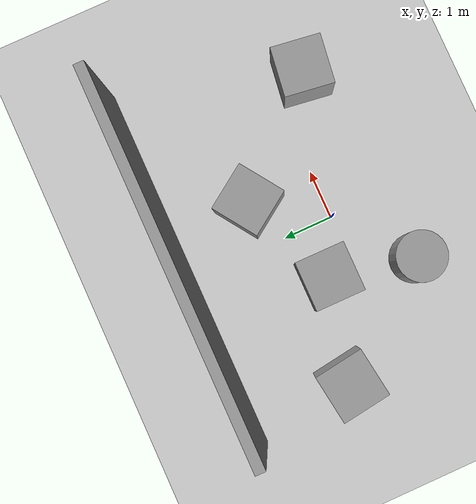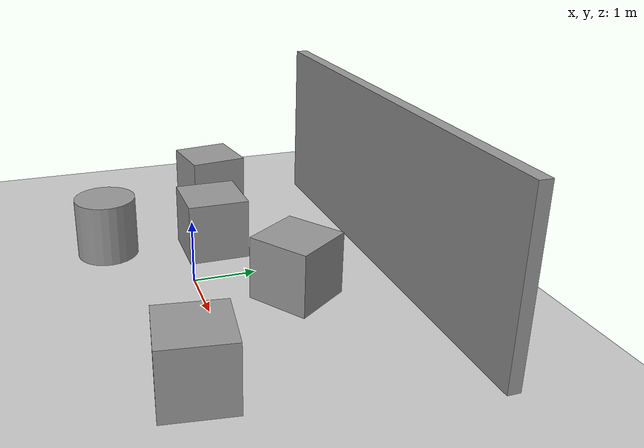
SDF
<sdf version="1.6">
 <world name="default">
  <light name="sun" type="directional">
   <pose>0 0 10 0 -0 0</pose>
   <diffuse>0.8 0.8 0.8 1</diffuse>
   <specular>0.1 0.1 0.1 1</specular>
   <attenuation>
    <range>1000</range>
    <constant>0.9</constant>
    <linear>0.01</linear>
    <quadratic>0.001</quadratic>
   </attenuation>
   <direction>-0.5 0.5 -1</direction>
  </light>
  <model name="ground_plane">
   <static>1</static>
   <link name="link">
    <collision name="collision">
     <geometry><plane><normal>0 0 1</normal><size>100 100</size></plane></geometry>
     <surface><friction><ode><mu>100</mu><mu2>50</mu2></ode></friction></surface>
    </collision>
    <visual name="visual">
     <cast_shadows>0</cast_shadows>
     <geometry><plane><normal>0 0 1</normal><size>100 100</size></plane></geometry>
     <material>
      <script><uri>file://media/materials/scripts/gazebo.material</uri><name>Gazebo/Grey</name></script>
     </material>
    </visual>
   </link>
  </model>
  <gravity>0 0 -9.8</gravity>
  <magnetic_field>6e-06 2.3e-05 -4.2e-05</magnetic_field>
  <atmosphere type="adiabatic"/>
  <physics name="default_physics" default="0" type="ode">
   <max_step_size>0.001</max_step_size>
   <real_time_factor>1</real_time_factor>
   <real_time_update_rate>1000</real_time_update_rate>
  </physics>
  <scene><ambient>0.4 0.4 0.4 1</ambient><background>0.7 0.7 0.7 1</background><shadows>1</shadows></scene>
  <spherical_coordinates>
   <surface_model>EARTH_WGS84</surface_model>
   <latitude_deg>0</latitude_deg>
   <longitude_deg>0</longitude_deg>
   <elevation>0</elevation>
   <heading_deg>0</heading_deg>
  </spherical_coordinates>
  <model name="grey_wall_asl">
   <static>1</static>
   <link name="link">
    <pose>0 0 1.4 0 -0 0</pose>
    <collision name="collision"><geometry><box><size>7.5 0.2 2.8</size></box></geometry></collision>
    <visual name="visual">
     <cast_shadows>0</cast_shadows>
     <geometry><box><size>7.5 0.2 2.8</size></box></geometry>
     <material>
      <script>
       <uri>model://grey_wall_asl/materials/scripts</uri>
       <uri>model://grey_wall_asl/materials/textures</uri>
       <name>vrc/grey_wall</name>
      </script>
     </material>
    </visual>
   </link>
   <pose>0.245174 3.06612 0 0 -0 0</pose>
  </model>
  <model name="unit_box">
   <pose>0.904487 1.37867 0.499999 5e-06 -4e-06 -0.969202</pose>
   <link name="link">
    <inertial>
     <mass>1</mass>
     <inertia>
      <ixx>0.166667</ixx>
      <ixy>0</ixy>
      <ixz>0</ixz>
      <iyy>0.166667</iyy>
      <iyz>0</iyz>
      <izz>0.166667</izz>
     </inertia>
    </inertial>
    <collision name="collision"><geometry><box><size>1 1 1</size></box></geometry></collision>
    <visual name="visual">
     <geometry><box><size>1 1 1</size></box></geometry>
     <material>
      <script><name>Gazebo/Grey</name><uri>file://media/materials/scripts/gazebo.material</uri></script>
     </material>
    </visual>
   </link>
  </model>
  <model name="unit_box_0">
   <pose>-3.07748 1.03399 0.499998 1e-06 -4e-06 0.142066</pose>
   <link name="link">
    <inertial>
     <mass>1</mass>
     <inertia>
      <ixx>0.166667</ixx>
      <ixy>0</ixy>
      <ixz>0</ixz>
      <iyy>0.166667</iyy>
      <iyz>0</iyz>
      <izz>0.166667</izz>
     </inertia>
    </inertial>
    <collision name="collision"><geometry><box><size>1 1 1</size></box></geometry></collision>
    <visual name="visual">
     <geometry><box><size>1 1 1</size></box></geometry>
     <material>
      <script><name>Gazebo/Grey</name><uri>file://media/materials/scripts/gazebo.material</uri></script>
     </material>
    </visual>
   </link>
  </model>
  <model name="unit_cylinder">
   <pose>-1.41226 -1.16179 0.499992 -3e-06 3e-06 0</pose>
   <link name="link">
    <inertial>
     <mass>1</mass>
     <inertia><ixx>0.145833</ixx><ixy>0</ixy><ixz>0</ixz><iyy>0.145833</iyy><iyz>0</iyz><izz>0.125</izz></inertia>
    </inertial>
    <collision name="collision">
     <geometry><cylinder><radius>0.5</radius><length>1</length></cylinder></geometry>
    </collision>
    <visual name="visual">
     <geometry><cylinder><radius>0.5</radius><length>1</length></cylinder></geometry>
     <material>
      <script><name>Gazebo/Grey</name><uri>file://media/materials/scripts/gazebo.material</uri></script>
     </material>
    </visual>
   </link>
  </model>
  <model name="unit_box_1">
   <pose>-1.04833 0.568982 0.499995 0 -1e-05 0</pose>
   <link name="link">
    <inertial>
     <mass>1</mass>
     <inertia>
      <ixx>0.166667</ixx>
      <ixy>0</ixy>
      <ixz>0</ixz>
      <iyy>0.166667</iyy>
      <iyz>0</iyz>
      <izz>0.166667</izz>
     </inertia>
    </inertial>
    <collision name="collision"><geometry><box><size>1 1 1</size></box></geometry></collision>
    <visual name="visual">
     <geometry><box><size>1 1 1</size></box></geometry>
     <material>
      <script><name>Gazebo/Grey</name><uri>file://media/materials/scripts/gazebo.material</uri></script>
     </material>
    </visual>
   </link>
  </model>
  <model name="unit_box_2">
   <pose>2.82183 -0.618401 0.5 0 0 -0.134103</pose>
   <link name="link">
    <inertial>
     <mass>1</mass>
     <inertia>
      <ixx>0.166667</ixx>
      <ixy>0</ixy>
      <ixz>0</ixz>
      <iyy>0.166667</iyy>
      <iyz>0</iyz>
      <izz>0.166667</izz>
     </inertia>
    </inertial>
    <collision name="collision"><geometry><box><size>1 1 1</size></box></geometry></collision>
    <visual name="visual">
     <geometry><box><size>1 1 1</size></box></geometry>
     <material>
      <script><name>Gazebo/Grey</name><uri>file://media/materials/scripts/gazebo.material</uri></script>
     </material>
    </visual>
   </link>
  </model>
 </world>
</sdf>
